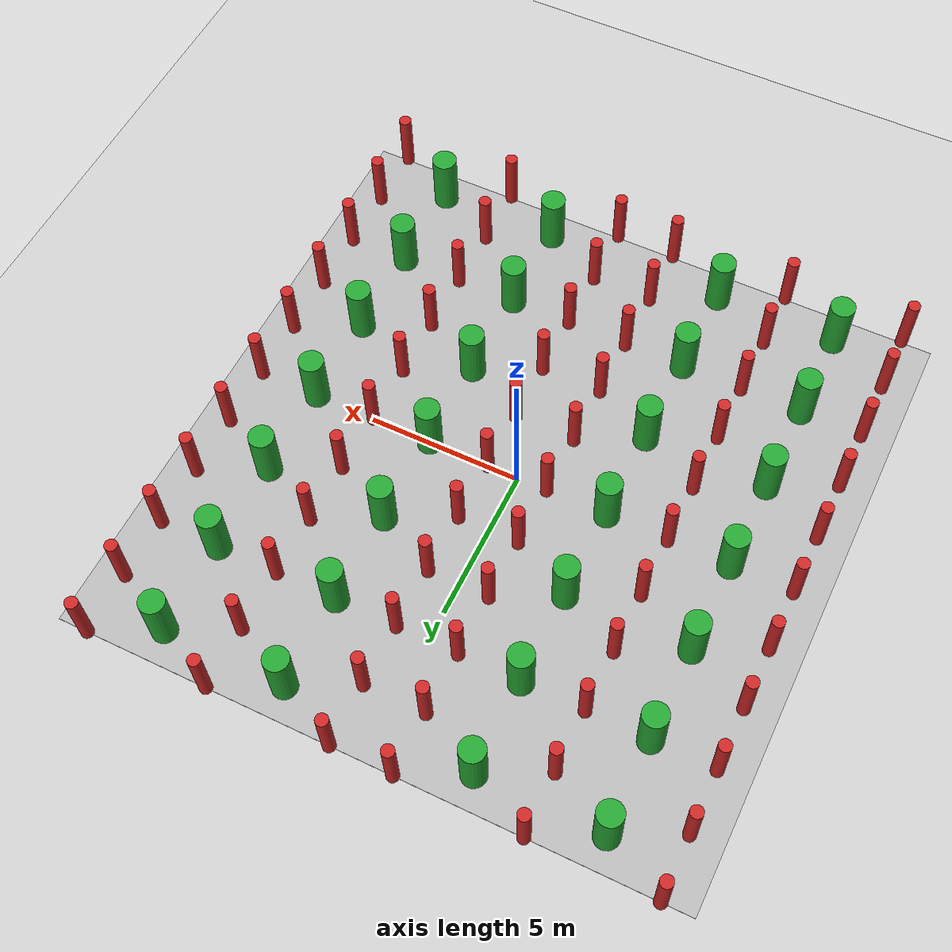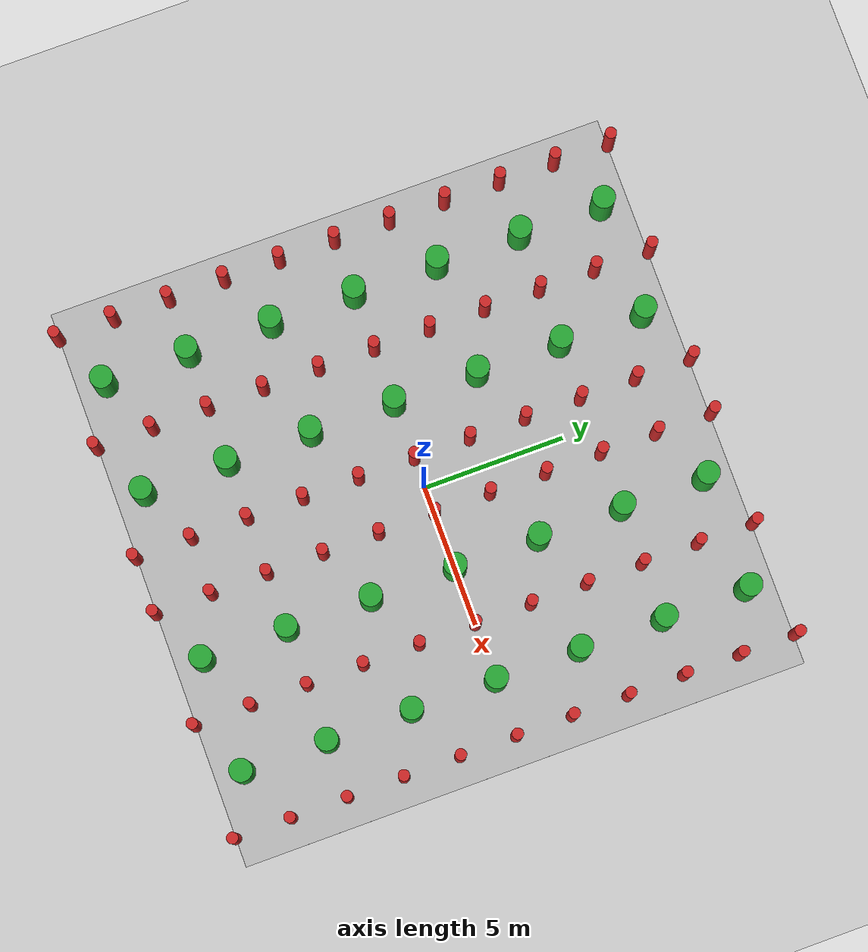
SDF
<?xml version="1.0"?>
<sdf version="1.7">
  <world name="planning_test3">
    <physics type="ode">
      <gravity>0 0 -9.8066</gravity>
      <ode>
        <solver>
          <type>quick</type>
          <iters>10</iters>
          <sor>1.3</sor>
          <use_dynamic_moi_rescaling>0</use_dynamic_moi_rescaling>
        </solver>
        <constraints>
          <cfm>0.00001</cfm>
          <erp>0.2</erp>
          <contact_max_correcting_vel>1000</contact_max_correcting_vel>
          <contact_surface_layer>0.01</contact_surface_layer>
        </constraints>
      </ode>
      <max_step_size>0.004</max_step_size>
      <real_time_factor>1.0</real_time_factor>
      <real_time_update_rate>250</real_time_update_rate>
      <magnetic_field>6.0e-6 2.3e-5 -4.2e-5</magnetic_field>
    </physics>

    <gui fullscreen="0">
      <camera name="user_camera">
        <pose>-13.0 0.0 12.0 0 0.75 0.0</pose>
        <view_controller>orbit</view_controller>
      </camera>
    </gui>

    <light type="directional" name="sun">
      <cast_shadows>false</cast_shadows>
      <pose>0 0 100 0 0 0</pose>
      <diffuse>0.8 0.8 0.8 1</diffuse>
      <specular>0.9 0.9 0.9 1</specular>
      <attenuation>
        <range>1000</range>
        <constant>0.9</constant>
        <linear>0.01</linear>
        <quadratic>0.001</quadratic>
      </attenuation>
      <direction>0.2 0.2 -0.9</direction>
    </light>

    <scene>
      <shadows>0</shadows>
    </scene>

    <include>
      <uri>model://ground_plane</uri>
    </include>
     <include>
      <uri>model://yundrone</uri>
      <name>yundrone</name>
      <pose>0 0 0 0 0 0</pose>
      <static>true</static>
    </include>

    <!-- Green cylinders -->

    <include>
      <uri>model://cylinder_20cm</uri>
      <name>cylinder_20cm_-9_-10.0</name>
      <pose>-9 -10 1 0 0 0</pose>
    </include>

    <include>
      <uri>model://cylinder_20cm</uri>
      <name>cylinder_20cm_-9_-8.0</name>
      <pose>-9 -8 1 0 0 0</pose>
    </include>

    <include>
      <uri>model://cylinder_20cm</uri>
      <name>cylinder_20cm_-9_-6.0</name>
      <pose>-9 -6 1 0 0 0</pose>
    </include>

    <include>
      <uri>model://cylinder_20cm</uri>
      <name>cylinder_20cm_-9_-4.0</name>
      <pose>-9 -4 1 0 0 0</pose>
    </include>

    <include>
      <uri>model://cylinder_20cm</uri>
      <name>cylinder_20cm_-9_-2.0</name>
      <pose>-9 -2 1 0 0 0</pose>
    </include>

    <include>
      <uri>model://cylinder_20cm</uri>
      <name>cylinder_20cm_-9_0.0</name>
      <pose>-9 0 1 0 0 0</pose>
    </include>

    <include>
      <uri>model://cylinder_20cm</uri>
      <name>cylinder_20cm_-9_2.0</name>
      <pose>-9 2 1 0 0 0</pose>
    </include>

    <include>
      <uri>model://cylinder_20cm</uri>
      <name>cylinder_20cm_-9_4.0</name>
      <pose>-9 4 1 0 0 0</pose>
    </include>

    <include>
      <uri>model://cylinder_20cm</uri>
      <name>cylinder_20cm_-9_6.0</name>
      <pose>-9 6 1 0 0 0</pose>
    </include>

    <include>
      <uri>model://cylinder_20cm</uri>
      <name>cylinder_20cm_-9_8.0</name>
      <pose>-9 8 1 0 0 0</pose>
    </include>

    <include>
      <uri>model://cylinder_20cm</uri>
      <name>cylinder_20cm_-9_10.0</name>
      <pose>-9 10 1 0 0 0</pose>
    </include>

    <include>
      <uri>model://cylinder_20cm</uri>
      <name>cylinder_20cm_-5_-10.0</name>
      <pose>-5 -10 1 0 0 0</pose>
    </include>

    <include>
      <uri>model://cylinder_20cm</uri>
      <name>cylinder_20cm_-5_-8.0</name>
      <pose>-5 -8 1 0 0 0</pose>
    </include>

    <include>
      <uri>model://cylinder_20cm</uri>
      <name>cylinder_20cm_-5_-6.0</name>
      <pose>-5 -6 1 0 0 0</pose>
    </include>

    <include>
      <uri>model://cylinder_20cm</uri>
      <name>cylinder_20cm_-5_-4.0</name>
      <pose>-5 -4 1 0 0 0</pose>
    </include>

    <include>
      <uri>model://cylinder_20cm</uri>
      <name>cylinder_20cm_-5_-2.0</name>
      <pose>-5 -2 1 0 0 0</pose>
    </include>

    <include>
      <uri>model://cylinder_20cm</uri>
      <name>cylinder_20cm_-5_0.0</name>
      <pose>-5 0 1 0 0 0</pose>
    </include>

    <include>
      <uri>model://cylinder_20cm</uri>
      <name>cylinder_20cm_-5_2.0</name>
      <pose>-5 2 1 0 0 0</pose>
    </include>

    <include>
      <uri>model://cylinder_20cm</uri>
      <name>cylinder_20cm_-5_4.0</name>
      <pose>-5 4 1 0 0 0</pose>
    </include>

    <include>
      <uri>model://cylinder_20cm</uri>
      <name>cylinder_20cm_-5_6.0</name>
      <pose>-5 6 1 0 0 0</pose>
    </include>

    <include>
      <uri>model://cylinder_20cm</uri>
      <name>cylinder_20cm_-5_8.0</name>
      <pose>-5 8 1 0 0 0</pose>
    </include>

    <include>
      <uri>model://cylinder_20cm</uri>
      <name>cylinder_20cm_-5_10.0</name>
      <pose>-5 10 1 0 0 0</pose>
    </include>

    <include>
      <uri>model://cylinder_20cm</uri>
      <name>cylinder_20cm_-1_-10.0</name>
      <pose>-1 -10 1 0 0 0</pose>
    </include>

    <include>
      <uri>model://cylinder_20cm</uri>
      <name>cylinder_20cm_-1_-8.0</name>
      <pose>-1 -8 1 0 0 0</pose>
    </include>

    <include>
      <uri>model://cylinder_20cm</uri>
      <name>cylinder_20cm_-1_-6.0</name>
      <pose>-1 -6 1 0 0 0</pose>
    </include>

    <include>
      <uri>model://cylinder_20cm</uri>
      <name>cylinder_20cm_-1_-4.0</name>
      <pose>-1 -4 1 0 0 0</pose>
    </include>

    <include>
      <uri>model://cylinder_20cm</uri>
      <name>cylinder_20cm_-1_-2.0</name>
      <pose>-1 -2 1 0 0 0</pose>
    </include>

    <include>
      <uri>model://cylinder_20cm</uri>
      <name>cylinder_20cm_-1_0.0</name>
      <pose>-1 0 1 0 0 0</pose>
    </include>

    <include>
      <uri>model://cylinder_20cm</uri>
      <name>cylinder_20cm_-1_2.0</name>
      <pose>-1 2 1 0 0 0</pose>
    </include>

    <include>
      <uri>model://cylinder_20cm</uri>
      <name>cylinder_20cm_-1_4.0</name>
      <pose>-1 4 1 0 0 0</pose>
    </include>

    <include>
      <uri>model://cylinder_20cm</uri>
      <name>cylinder_20cm_-1_6.0</name>
      <pose>-1 6 1 0 0 0</pose>
    </include>

    <include>
      <uri>model://cylinder_20cm</uri>
      <name>cylinder_20cm_-1_8.0</name>
      <pose>-1 8 1 0 0 0</pose>
    </include>

    <include>
      <uri>model://cylinder_20cm</uri>
      <name>cylinder_20cm_-1_10.0</name>
      <pose>-1 10 1 0 0 0</pose>
    </include>

    <include>
      <uri>model://cylinder_20cm</uri>
      <name>cylinder_20cm_1_-10.0</name>
      <pose>1 -10 1 0 0 0</pose>
    </include>

    <include>
      <uri>model://cylinder_20cm</uri>
      <name>cylinder_20cm_1_-8.0</name>
      <pose>1 -8 1 0 0 0</pose>
    </include>

    <include>
      <uri>model://cylinder_20cm</uri>
      <name>cylinder_20cm_1_-6.0</name>
      <pose>1 -6 1 0 0 0</pose>
    </include>

    <include>
      <uri>model://cylinder_20cm</uri>
      <name>cylinder_20cm_1_-4.0</name>
      <pose>1 -4 1 0 0 0</pose>
    </include>

    <include>
      <uri>model://cylinder_20cm</uri>
      <name>cylinder_20cm_1_-2.0</name>
      <pose>1 -2 1 0 0 0</pose>
    </include>

    <include>
      <uri>model://cylinder_20cm</uri>
      <name>cylinder_20cm_1_0.0</name>
      <pose>1 0 1 0 0 0</pose>
    </include>

    <include>
      <uri>model://cylinder_20cm</uri>
      <name>cylinder_20cm_1_2.0</name>
      <pose>1 2 1 0 0 0</pose>
    </include>

    <include>
      <uri>model://cylinder_20cm</uri>
      <name>cylinder_20cm_1_4.0</name>
      <pose>1 4 1 0 0 0</pose>
    </include>

    <include>
      <uri>model://cylinder_20cm</uri>
      <name>cylinder_20cm_1_6.0</name>
      <pose>1 6 1 0 0 0</pose>
    </include>

    <include>
      <uri>model://cylinder_20cm</uri>
      <name>cylinder_20cm_1_8.0</name>
      <pose>1 8 1 0 0 0</pose>
    </include>

    <include>
      <uri>model://cylinder_20cm</uri>
      <name>cylinder_20cm_1_10.0</name>
      <pose>1 10 1 0 0 0</pose>
    </include>

    <include>
      <uri>model://cylinder_20cm</uri>
      <name>cylinder_20cm_5_-10.0</name>
      <pose>5 -10 1 0 0 0</pose>
    </include>

    <include>
      <uri>model://cylinder_20cm</uri>
      <name>cylinder_20cm_5_-8.0</name>
      <pose>5 -8 1 0 0 0</pose>
    </include>

    <include>
      <uri>model://cylinder_20cm</uri>
      <name>cylinder_20cm_5_-6.0</name>
      <pose>5 -6 1 0 0 0</pose>
    </include>

    <include>
      <uri>model://cylinder_20cm</uri>
      <name>cylinder_20cm_5_-4.0</name>
      <pose>5 -4 1 0 0 0</pose>
    </include>

    <include>
      <uri>model://cylinder_20cm</uri>
      <name>cylinder_20cm_5_-2.0</name>
      <pose>5 -2 1 0 0 0</pose>
    </include>

    <include>
      <uri>model://cylinder_20cm</uri>
      <name>cylinder_20cm_5_0.0</name>
      <pose>5 0 1 0 0 0</pose>
    </include>

    <include>
      <uri>model://cylinder_20cm</uri>
      <name>cylinder_20cm_5_2.0</name>
      <pose>5 2 1 0 0 0</pose>
    </include>

    <include>
      <uri>model://cylinder_20cm</uri>
      <name>cylinder_20cm_5_4.0</name>
      <pose>5 4 1 0 0 0</pose>
    </include>

    <include>
      <uri>model://cylinder_20cm</uri>
      <name>cylinder_20cm_5_6.0</name>
      <pose>5 6 1 0 0 0</pose>
    </include>

    <include>
      <uri>model://cylinder_20cm</uri>
      <name>cylinder_20cm_5_8.0</name>
      <pose>5 8 1 0 0 0</pose>
    </include>

    <include>
      <uri>model://cylinder_20cm</uri>
      <name>cylinder_20cm_5_10.0</name>
      <pose>5 10 1 0 0 0</pose>
    </include>

    <include>
      <uri>model://cylinder_20cm</uri>
      <name>cylinder_20cm_9_-10.0</name>
      <pose>9 -10 1 0 0 0</pose>
    </include>

    <include>
      <uri>model://cylinder_20cm</uri>
      <name>cylinder_20cm_9_-8.0</name>
      <pose>9 -8 1 0 0 0</pose>
    </include>

    <include>
      <uri>model://cylinder_20cm</uri>
      <name>cylinder_20cm_9_-6.0</name>
      <pose>9 -6 1 0 0 0</pose>
    </include>

    <include>
      <uri>model://cylinder_20cm</uri>
      <name>cylinder_20cm_9_-4.0</name>
      <pose>9 -4 1 0 0 0</pose>
    </include>

    <include>
      <uri>model://cylinder_20cm</uri>
      <name>cylinder_20cm_9_-2.0</name>
      <pose>9 -2 1 0 0 0</pose>
    </include>

    <include>
      <uri>model://cylinder_20cm</uri>
      <name>cylinder_20cm_9_0.0</name>
      <pose>9 0 1 0 0 0</pose>
    </include>

    <include>
      <uri>model://cylinder_20cm</uri>
      <name>cylinder_20cm_9_2.0</name>
      <pose>9 2 1 0 0 0</pose>
    </include>

    <include>
      <uri>model://cylinder_20cm</uri>
      <name>cylinder_20cm_9_4.0</name>
      <pose>9 4 1 0 0 0</pose>
    </include>

    <include>
      <uri>model://cylinder_20cm</uri>
      <name>cylinder_20cm_9_6.0</name>
      <pose>9 6 1 0 0 0</pose>
    </include>

    <include>
      <uri>model://cylinder_20cm</uri>
      <name>cylinder_20cm_9_8.0</name>
      <pose>9 8 1 0 0 0</pose>
    </include>

    <include>
      <uri>model://cylinder_20cm</uri>
      <name>cylinder_20cm_9_10.0</name>
      <pose>9 10 1 0 0 0</pose>
    </include>

    <!-- Red cylinders -->

    <include>
      <uri>model://cylinder_40cm</uri>
      <name>cylinder_40cm_-7_-9.0</name>
      <pose>-7 -9 1 0 0 0</pose>
    </include>

    <include>
      <uri>model://cylinder_40cm</uri>
      <name>cylinder_40cm_-7_-6.0</name>
      <pose>-7 -6 1 0 0 0</pose>
    </include>

    <include>
      <uri>model://cylinder_40cm</uri>
      <name>cylinder_40cm_-7_-3.0</name>
      <pose>-7 -3 1 0 0 0</pose>
    </include>

    <include>
      <uri>model://cylinder_40cm</uri>
      <name>cylinder_40cm_-7_0.0</name>
      <pose>-7 0 1 0 0 0</pose>
    </include>

    <include>
      <uri>model://cylinder_40cm</uri>
      <name>cylinder_40cm_-7_3.0</name>
      <pose>-7 3 1 0 0 0</pose>
    </include>

    <include>
      <uri>model://cylinder_40cm</uri>
      <name>cylinder_40cm_-7_6.0</name>
      <pose>-7 6 1 0 0 0</pose>
    </include>

    <include>
      <uri>model://cylinder_40cm</uri>
      <name>cylinder_40cm_-7_9.0</name>
      <pose>-7 9 1 0 0 0</pose>
    </include>

    <include>
      <uri>model://cylinder_40cm</uri>
      <name>cylinder_40cm_-3_-9.0</name>
      <pose>-3 -9 1 0 0 0</pose>
    </include>

    <include>
      <uri>model://cylinder_40cm</uri>
      <name>cylinder_40cm_-3_-6.0</name>
      <pose>-3 -6 1 0 0 0</pose>
    </include>

    <include>
      <uri>model://cylinder_40cm</uri>
      <name>cylinder_40cm_-3_-3.0</name>
      <pose>-3 -3 1 0 0 0</pose>
    </include>

    <include>
      <uri>model://cylinder_40cm</uri>
      <name>cylinder_40cm_-3_0.0</name>
      <pose>-3 0 1 0 0 0</pose>
    </include>

    <include>
      <uri>model://cylinder_40cm</uri>
      <name>cylinder_40cm_-3_3.0</name>
      <pose>-3 3 1 0 0 0</pose>
    </include>

    <include>
      <uri>model://cylinder_40cm</uri>
      <name>cylinder_40cm_-3_6.0</name>
      <pose>-3 6 1 0 0 0</pose>
    </include>

    <include>
      <uri>model://cylinder_40cm</uri>
      <name>cylinder_40cm_-3_9.0</name>
      <pose>-3 9 1 0 0 0</pose>
    </include>

    <include>
      <uri>model://cylinder_40cm</uri>
      <name>cylinder_40cm_3_-9.0</name>
      <pose>3 -9 1 0 0 0</pose>
    </include>

    <include>
      <uri>model://cylinder_40cm</uri>
      <name>cylinder_40cm_3_-6.0</name>
      <pose>3 -6 1 0 0 0</pose>
    </include>

    <include>
      <uri>model://cylinder_40cm</uri>
      <name>cylinder_40cm_3_-3.0</name>
      <pose>3 -3 1 0 0 0</pose>
    </include>

    <include>
      <uri>model://cylinder_40cm</uri>
      <name>cylinder_40cm_3_0.0</name>
      <pose>3 0 1 0 0 0</pose>
    </include>

    <include>
      <uri>model://cylinder_40cm</uri>
      <name>cylinder_40cm_3_3.0</name>
      <pose>3 3 1 0 0 0</pose>
    </include>

    <include>
      <uri>model://cylinder_40cm</uri>
      <name>cylinder_40cm_3_6.0</name>
      <pose>3 6 1 0 0 0</pose>
    </include>

    <include>
      <uri>model://cylinder_40cm</uri>
      <name>cylinder_40cm_3_9.0</name>
      <pose>3 9 1 0 0 0</pose>
    </include>

    <include>
      <uri>model://cylinder_40cm</uri>
      <name>cylinder_40cm_7_-9.0</name>
      <pose>7 -9 1 0 0 0</pose>
    </include>

    <include>
      <uri>model://cylinder_40cm</uri>
      <name>cylinder_40cm_7_-6.0</name>
      <pose>7 -6 1 0 0 0</pose>
    </include>

    <include>
      <uri>model://cylinder_40cm</uri>
      <name>cylinder_40cm_7_-3.0</name>
      <pose>7 -3 1 0 0 0</pose>
    </include>

    <include>
      <uri>model://cylinder_40cm</uri>
      <name>cylinder_40cm_7_0.0</name>
      <pose>7 0 1 0 0 0</pose>
    </include>

    <include>
      <uri>model://cylinder_40cm</uri>
      <name>cylinder_40cm_7_3.0</name>
      <pose>7 3 1 0 0 0</pose>
    </include>

    <include>
      <uri>model://cylinder_40cm</uri>
      <name>cylinder_40cm_7_6.0</name>
      <pose>7 6 1 0 0 0</pose>
    </include>

    <include>
      <uri>model://cylinder_40cm</uri>
      <name>cylinder_40cm_7_9.0</name>
      <pose>7 9 1 0 0 0</pose>
    </include>
  </world>
</sdf>

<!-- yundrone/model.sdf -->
<sdf version="1.5">
    <model name='yundrone'>
      <static>true</static>
      <link name="yundrone">
        <pose frame=''> 0.0 0.0 0.0 0.0 0.0 0.0</pose>
        <visual name="visual">
            <cast_shadows>false</cast_shadows>
            <geometry>
              <box>
                <size>20.0 20.0 0.01</size>
              </box>
            </geometry>
            <material>
              <script>
                <uri>model://yundrone_logo/yundrone_logo.material</uri>
                <name>yundrone_logo</name>
              </script>
            </material>
        </visual>
      </link>
    </model>
</sdf>

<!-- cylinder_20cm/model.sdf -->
<sdf version="1.7">
  <model name="cylinder_20cm">
    <link name="link">
      <!-- 视觉属性 -->
      <visual name="visual">
        <geometry>
          <cylinder>
            <radius>0.2</radius>
            <length>2</length>
          </cylinder>
        </geometry>
        <material>
          <!-- 使用Gazebo预置红色材质 -->
          <script>
            <uri>file://media/materials/scripts/gazebo.material</uri>
            <name>Gazebo/Red</name>
          </script>
          <!-- 或直接使用RGBA值 -->
        </material>
      </visual>

      <!-- 碰撞属性 -->
      <collision name="collision">
        <geometry>
          <cylinder>
            <radius>0.2</radius>
            <length>2</length>
          </cylinder>
        </geometry>
      </collision>

      <!-- 物理属性 -->
      <inertial>
        <mass>1</mass>  <!-- 质量设为1kg -->
        <inertia>
          <!-- 圆柱体惯性矩阵（基于质量1kg计算） -->
          <ixx>0.3358</ixx>
          <ixy>0</ixy>
          <ixz>0</ixz>
          <iyy>0.3358</iyy>
          <iyz>0</iyz>
          <izz>0.005</izz>
        </inertia>
      </inertial>
    </link>
  </model>
</sdf>

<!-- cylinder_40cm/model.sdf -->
<sdf version="1.7">
  <model name="cylinder_40cm">
    <link name="link">
      <!-- 视觉属性 -->
      <visual name="visual">
        <geometry>
          <cylinder>
            <radius>0.4</radius>
            <length>2</length>
          </cylinder>
        </geometry>
        <material>
          <!-- 使用Gazebo预置红色材质 -->
          <script>
            <uri>file://media/materials/scripts/gazebo.material</uri>
            <name>Gazebo/Green</name>
          </script>
          <!-- 或直接使用RGBA值 -->
        </material>
      </visual>

      <!-- 碰撞属性 -->
      <collision name="collision">
        <geometry>
          <cylinder>
            <radius>0.4</radius>
            <length>2</length>
          </cylinder>
        </geometry>
      </collision>

      <!-- 物理属性 -->
      <inertial>
        <mass>1</mass>  <!-- 质量设为1kg -->
        <inertia>
          <!-- 圆柱体惯性矩阵（基于质量1kg计算） -->
          <ixx>0.3358</ixx>
          <ixy>0</ixy>
          <ixz>0</ixz>
          <iyy>0.3358</iyy>
          <iyz>0</iyz>
          <izz>0.005</izz>
        </inertia>
      </inertial>
    </link>
  </model>
</sdf>
